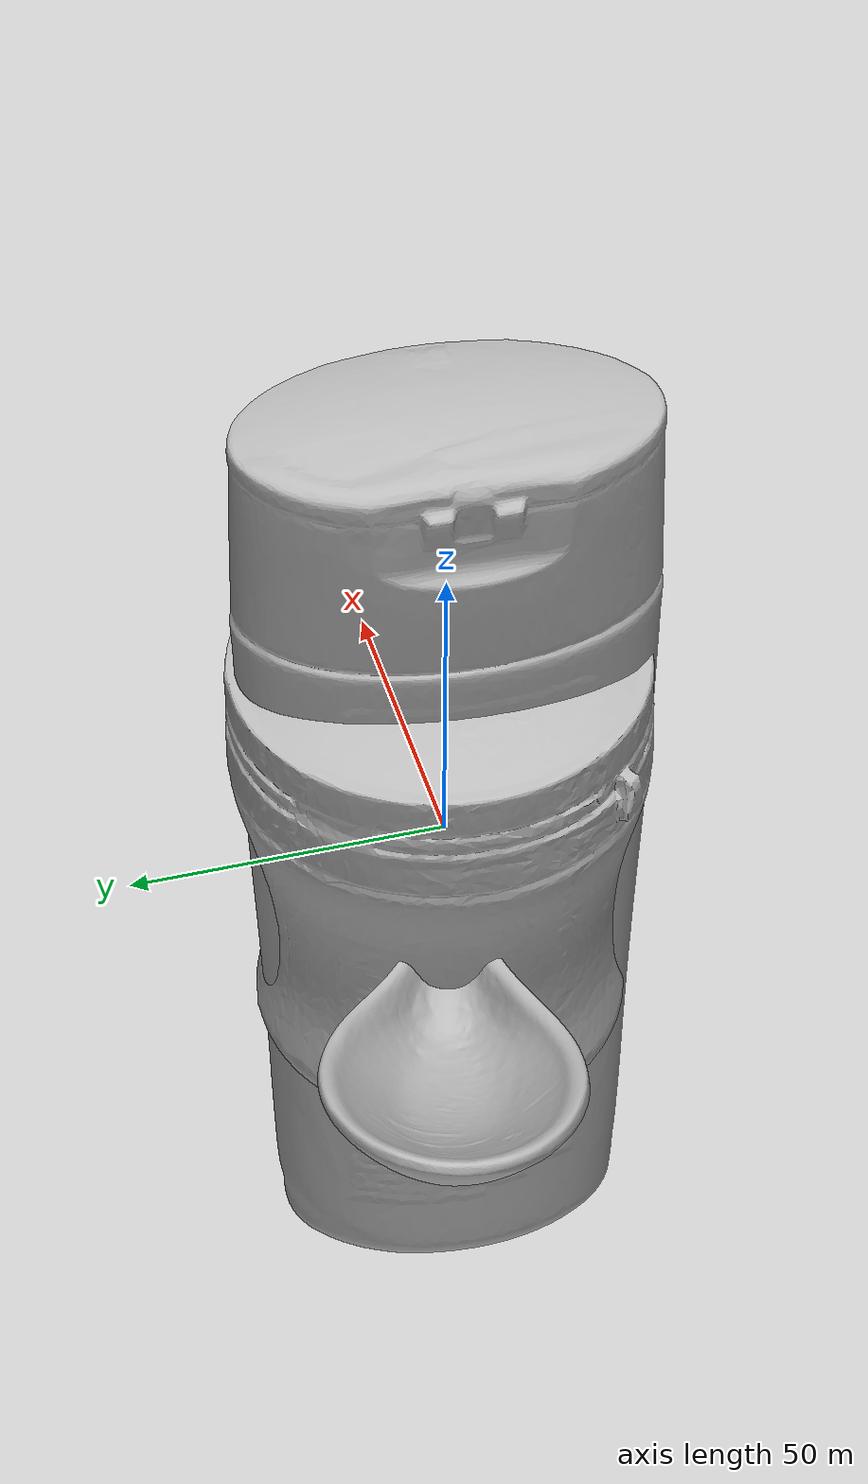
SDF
<sdf version="1.4">
 <world name="default">
  <light name="light1" type="point">
   <pose>0 0 1 0 0 0</pose>
   <diffuse>3 3 3 1</diffuse>
   <specular>3 3 3 1</specular>
  </light>
  <light name="light2" type="point">
   <pose>0 0.5 2 0 0 0</pose>
   <diffuse>1 1 1 1</diffuse>
   <specular>1 1 1 1</specular>
  </light>
  <light name="light3" type="point">
   <pose>0 0.5 2 0 0 0</pose>
   <diffuse>3 3 3 1</diffuse>
   <specular>3 3 3 1</specular>
  </light>
  <scene><ambient>0.7 0.7 0.7</ambient></scene>
  <model name="bottle1">
   <link name="link_bottle1">
    <collision name="default">
     <geometry>
      <mesh><uri>model://green_arrow/collision_meshes/collision.obj</uri><scale>1.0 1.0 1.0</scale></mesh>
     </geometry>
     <surface>
      <friction><ode><mu>0.5</mu><mu2>0.5</mu2></ode></friction>
      <contact><ode><max_vel>0</max_vel><min_depth>0.0001</min_depth><kp>1e8</kp></ode></contact>
     </surface>
    </collision>
    <visual name="default">
     <geometry>
      <mesh><uri>model://green_arrow/visual_meshes/visual.dae</uri><scale>1.0 1.0 1.0</scale></mesh>
     </geometry>
    </visual>
    <inertial>
     <mass>0.159866601228714</mass>
     <pose>0.0005358478520065546 -0.0008270691614598036 0.0022109695710241795 -0.0633227561078847 0.012984243694000861 0.6740794776591725</pose>
     <inertia>
      <ixx>0.00011596808</ixx>
      <iyy>0.00011579238</iyy>
      <izz>7.488036e-05</izz>
      <ixy>0</ixy>
      <ixz>0</ixz>
      <iyz>0</iyz>
     </inertia>
    </inertial>
   </link>
   <pose>0.05333934724330902 -0.053871043026447296 0.03897777199745178 0.04656726491199263 0.022789866610589588 -3.0618148970571903</pose>
  </model>
  <model name="bottle2">
   <link name="link_bottle2">
    <collision name="default">
     <geometry>
      <mesh><uri>model://conditioner/collision_meshes/collision.obj</uri><scale>1.0 1.0 1.0</scale></mesh>
     </geometry>
     <surface>
      <friction><ode><mu>0.5</mu><mu2>0.5</mu2></ode></friction>
      <contact><ode><max_vel>0</max_vel><min_depth>0.0001</min_depth><kp>1e8</kp></ode></contact>
     </surface>
    </collision>
    <visual name="default">
     <geometry>
      <mesh><uri>model://conditioner/visual_meshes/visual.dae</uri><scale>1.0 1.0 1.0</scale></mesh>
     </geometry>
    </visual>
    <inertial>
     <mass>0.1887805312871933</mass>
     <pose>-0.00055994390277192 -0.00017297487647738308 0.004359682556241751 -0.005038374268360293 0.015306043554332214 0.015072361860715313</pose>
     <inertia>
      <ixx>0.00041066532</ixx>
      <iyy>0.00043991112</iyy>
      <izz>6.3318876e-05</izz>
      <ixy>0</ixy>
      <ixz>0</ixz>
      <iyz>0</iyz>
     </inertia>
    </inertial>
   </link>
   <pose>0.04692579060792923 0.2442692220211029 0.0812297835946083 0.03689402738638948 -0.015664388676851184 1.4948044871821915</pose>
  </model>
  <model name="silverware1">
   <link name="link_silverware1">
    <collision name="default">
     <geometry>
      <mesh><uri>model://doraemon_spoon/collision_meshes/collision.obj</uri><scale>1.0 1.0 1.0</scale></mesh>
     </geometry>
     <surface>
      <friction><ode><mu>0.5</mu><mu2>0.5</mu2></ode></friction>
      <contact><ode><max_vel>0</max_vel><min_depth>0.0001</min_depth><kp>1e8</kp></ode></contact>
     </surface>
    </collision>
    <visual name="default">
     <geometry>
      <mesh><uri>model://doraemon_spoon/visual_meshes/visual.dae</uri><scale>1.0 1.0 1.0</scale></mesh>
     </geometry>
    </visual>
    <inertial>
     <mass>0.029215902090072632</mass>
     <pose>-0.022165078669786453 -0.0006374581134878099 -0.003332544816657901 -0.009147069561506448 0.07380416816022378 -0.014123831282405222</pose>
     <inertia>
      <ixx>2.2884674e-06</ixx>
      <iyy>6.499588e-05</iyy>
      <izz>6.610089e-05</izz>
      <ixy>0</ixy>
      <ixz>0</ixz>
      <iyz>0</iyz>
     </inertia>
    </inertial>
   </link>
   <pose>0.09236882627010345 -0.019664211198687553 0.014970989897847176 0.029039240908800303 -0.004286251242422731 -0.25008859462527167</pose>
  </model>
  <model name="stationery1">
   <link name="link_stationery1">
    <collision name="default">
     <geometry>
      <mesh><uri>model://correction_fuid/collision_meshes/collision.obj</uri><scale>1.0 1.0 1.0</scale></mesh>
     </geometry>
     <surface>
      <friction><ode><mu>0.5</mu><mu2>0.5</mu2></ode></friction>
      <contact><ode><max_vel>0</max_vel><min_depth>0.0001</min_depth><kp>1e8</kp></ode></contact>
     </surface>
    </collision>
    <visual name="default">
     <geometry>
      <mesh><uri>model://correction_fuid/visual_meshes/visual.dae</uri><scale>1.0 1.0 1.0</scale></mesh>
     </geometry>
    </visual>
    <inertial>
     <mass>0.02664039097726345</mass>
     <pose>-0.00012557733862195164 -0.0009722907561808825 -0.001618212671019137 -0.010846611490809042 0.019488348158978066 -0.015992455472155966</pose>
     <inertia>
      <ixx>2.5801672e-05</ixx>
      <iyy>1.5615498e-06</iyy>
      <izz>2.6473212e-05</izz>
      <ixy>0</ixy>
      <ixz>0</ixz>
      <iyz>0</iyz>
     </inertia>
    </inertial>
   </link>
   <pose>-0.019566088914871216 -0.34469377994537354 0.009632829576730728 -0.001727177514153266 -0.05616759642997282 2.998183191640042</pose>
  </model>
  <model name="bowl1">
   <link name="link_bowl1">
    <collision name="default">
     <geometry>
      <mesh><uri>model://doraemon_bowl/collision_meshes/collision.obj</uri><scale>1.0 1.0 1.0</scale></mesh>
     </geometry>
     <surface>
      <friction><ode><mu>0.5</mu><mu2>0.5</mu2></ode></friction>
      <contact><ode><max_vel>0</max_vel><min_depth>0.0001</min_depth><kp>1e8</kp></ode></contact>
     </surface>
    </collision>
    <visual name="default">
     <geometry>
      <mesh><uri>model://doraemon_bowl/visual_meshes/visual.dae</uri><scale>1.0 1.0 1.0</scale></mesh>
     </geometry>
    </visual>
    <inertial>
     <mass>0.0632677748799324</mass>
     <pose>-0.014629557728767395 0.00048571318620815873 -0.0020864882972091436 -0.005093978566849342 -0.10568406006641042 -0.026426380562233804</pose>
     <inertia>
      <ixx>8.773087e-05</ixx>
      <iyy>0.00011545301</iyy>
      <izz>0.00016985848</izz>
      <ixy>0</ixy>
      <ixz>0</ixz>
      <iyz>0</iyz>
     </inertia>
    </inertial>
   </link>
   <pose>-0.03037550486624241 -0.06716826558113098 0.02590550109744072 0.008595864078842084 0.006342828081866679 -1.047491256247132</pose>
  </model>
  <model name="cup1">
   <link name="link_cup1">
    <collision name="default">
     <geometry>
      <mesh><uri>model://doraemon_cup/collision_meshes/collision.obj</uri><scale>1.0 1.0 1.0</scale></mesh>
     </geometry>
     <surface>
      <friction><ode><mu>0.5</mu><mu2>0.5</mu2></ode></friction>
      <contact><ode><max_vel>0</max_vel><min_depth>0.0001</min_depth><kp>1e8</kp></ode></contact>
     </surface>
    </collision>
    <visual name="default">
     <geometry>
      <mesh><uri>model://doraemon_cup/visual_meshes/visual.dae</uri><scale>1.0 1.0 1.0</scale></mesh>
     </geometry>
    </visual>
    <inertial>
     <mass>0.04278137534856796</mass>
     <pose>-0.0003292987239547074 -0.0016633577179163694 -0.0022522551007568836 0.19498548950287564 -0.013693938110122818 -0.3205458650037051</pose>
     <inertia>
      <ixx>5.8507427e-05</ixx>
      <iyy>5.6580026e-05</iyy>
      <izz>4.623892e-05</izz>
      <ixy>0</ixy>
      <ixz>0</ixz>
      <iyz>0</iyz>
     </inertia>
    </inertial>
   </link>
   <pose>-0.05515436455607414 0.2082645744085312 0.04622994735836983 -0.012942808527863904 -0.007428136203784646 -2.743106545715522</pose>
  </model>
  <model name="plate1">
   <link name="link_plate1">
    <collision name="default">
     <geometry>
      <mesh><uri>model://hello_kitty_plate/collision_meshes/collision.obj</uri><scale>1.0 1.0 1.0</scale></mesh>
     </geometry>
     <surface>
      <friction><ode><mu>0.5</mu><mu2>0.5</mu2></ode></friction>
      <contact><ode><max_vel>0</max_vel><min_depth>0.0001</min_depth><kp>1e8</kp></ode></contact>
     </surface>
    </collision>
    <visual name="default">
     <geometry>
      <mesh><uri>model://hello_kitty_plate/visual_meshes/visual.dae</uri><scale>1.0 1.0 1.0</scale></mesh>
     </geometry>
    </visual>
    <inertial>
     <mass>0.03555070236325264</mass>
     <pose>0.0073143006302416325 0.0002893744967877865 -0.0027947186026722193 -0.00010431820965322355 -0.007054446463638022 -0.014449070801334592</pose>
     <inertia>
      <ixx>6.855243e-05</ixx>
      <iyy>0.00012937908</iyy>
      <izz>0.0001964492</izz>
      <ixy>0</ixy>
      <ixz>0</ixz>
      <iyz>0</iyz>
     </inertia>
    </inertial>
   </link>
   <pose>0.18207727372646332 -0.06505535542964935 0.0740632489323616 0.44084989598118585 -0.4605285527807344 -1.0853009705326364</pose>
  </model>
  <model name="box4">
   <link name="link_box4">
    <collision name="default">
     <geometry>
      <mesh><uri>model://wooden_puzzle1/collision_meshes/collision.obj</uri><scale>1.0 1.0 1.0</scale></mesh>
     </geometry>
     <surface>
      <friction><ode><mu>0.5</mu><mu2>0.5</mu2></ode></friction>
      <contact><ode><max_vel>0</max_vel><min_depth>0.0001</min_depth><kp>1e8</kp></ode></contact>
     </surface>
    </collision>
    <visual name="default">
     <geometry>
      <mesh><uri>model://wooden_puzzle1/visual_meshes/visual.dae</uri><scale>1.0 1.0 1.0</scale></mesh>
     </geometry>
    </visual>
    <inertial>
     <mass>0.03278602659702301</mass>
     <pose>-0.00017350679263472557 7.972260937094688e-05 -9.191554272547364e-05 -0.07784358361794479 -0.263610796923839 -0.5528741327723476</pose>
     <inertia>
      <ixx>6.1858273e-06</ixx>
      <iyy>6.0667485e-06</iyy>
      <izz>6.139123e-06</izz>
      <ixy>0</ixy>
      <ixz>0</ixz>
      <iyz>0</iyz>
     </inertia>
    </inertial>
   </link>
   <pose>0.12416701763868332 -0.03617165982723236 0.041626133024692535 0.3590004448876131 -0.542978346595707 -0.8895299525543316</pose>
  </model>
  <physics type="ode">
   <max_contacts>50</max_contacts>
   <ode>
    <solver><type>quick</type><iters>75</iters></solver>
    <constraints>
     <contact_max_correcting_vel>0</contact_max_correcting_vel>
     <contact_surface_layer>0</contact_surface_layer>
    </constraints>
   </ode>
  </physics>
 </world>
</sdf>
